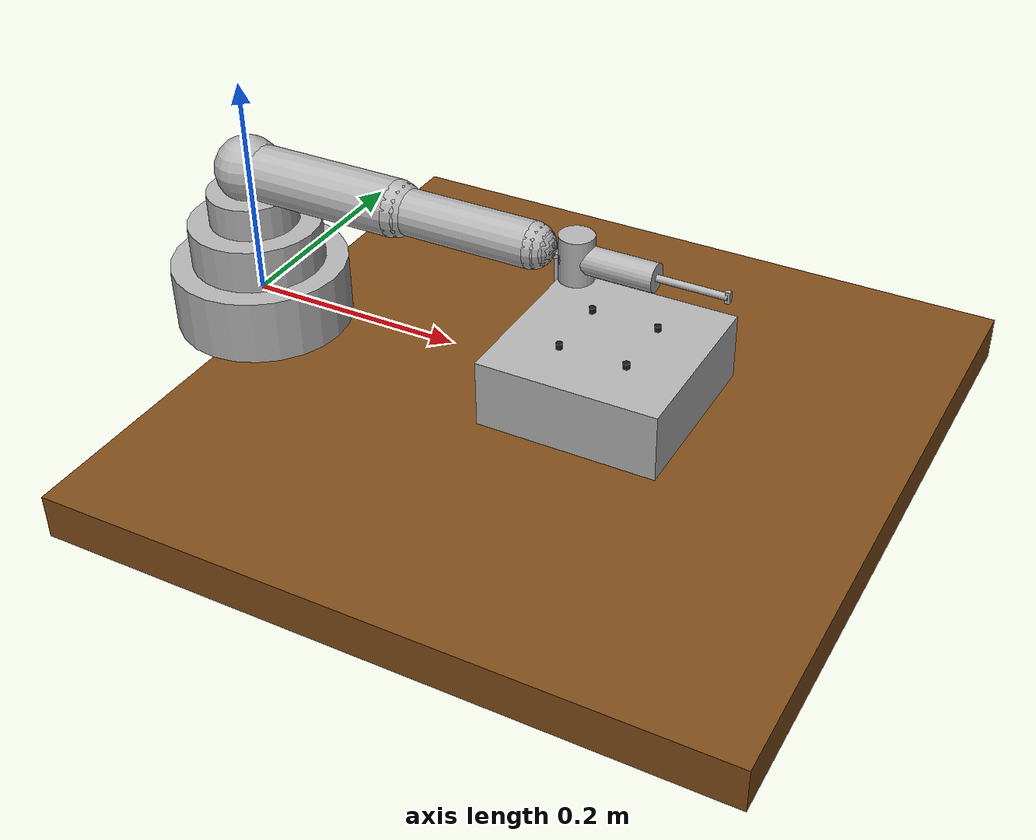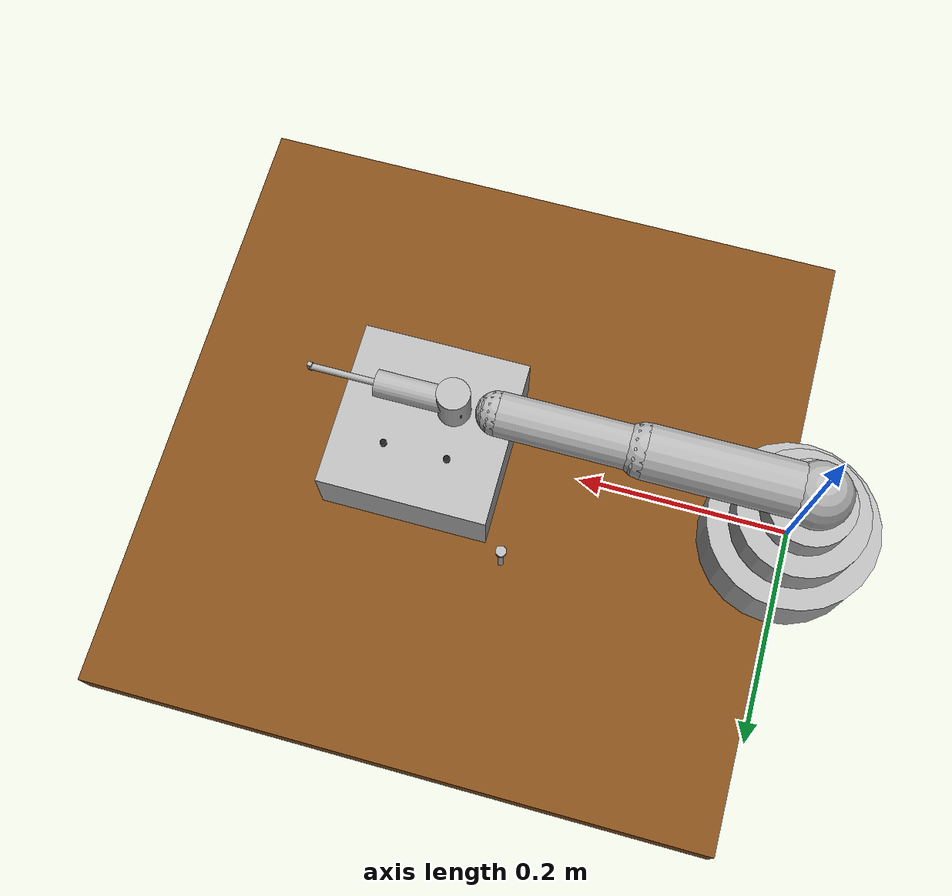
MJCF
<mujoco model="koch_screwdriver_follower_simple">
  <compiler angle="radian"/>

  <option timestep="0.002" gravity="0 0 -9.81">
    <flag contact="enable" energy="enable"/>
  </option>

  <default>
    <joint damping="0.1"/>
    <geom friction="1 0.5 0.001" rgba="0.7 0.7 0.7 1"/>
  </default>

  <asset>
    <material name="robot_gray" rgba="0.7 0.7 0.7 1"/>
    <material name="robot_black" rgba="0.2 0.2 0.2 1"/>
    <material name="tool_blue" rgba="0.3 0.3 0.8 1"/>
    <material name="wood" rgba="0.6 0.4 0.2 1"/>
    <material name="metal" rgba="0.8 0.8 0.8 1"/>
  </asset>

  <worldbody>
    <!-- Fixed base -->
    <body name="base" pos="0 0 0">
      <geom name="base_cylinder" type="cylinder" size="0.08 0.03" material="robot_black"/>
      <geom name="base_top" type="cylinder" size="0.06 0.02" pos="0 0 0.05" material="robot_gray"/>

      <!-- Joint 1: shoulder_pan (Z-axis rotation) -->
      <body name="shoulder_pan_link" pos="0 0 0.07">
        <joint name="shoulder_pan" type="hinge" axis="0 0 1" range="-3.14159 3.14159"/>
        <geom name="shoulder_base" type="cylinder" size="0.04 0.03" material="robot_gray"/>

        <!-- Joint 2: shoulder_lift (Y-axis rotation) -->
        <body name="shoulder_lift_link" pos="0 0 0.05">
          <joint name="shoulder_lift" type="hinge" axis="0 1 0" range="-1.57 1.57"/>
          <geom name="shoulder_joint" type="sphere" size="0.03" material="robot_black"/>
          <geom name="upper_arm" type="capsule" fromto="0 0 0 0.15 0 0" size="0.025" material="robot_gray"/>

          <!-- Joint 3: elbow_flex (Y-axis rotation) -->
          <body name="elbow_flex_link" pos="0.15 0 0">
            <joint name="elbow_flex" type="hinge" axis="0 1 0" range="-1.57 1.57" damping="0.05"/>
            <geom name="elbow_joint" type="sphere" size="0.025" material="robot_black"/>
            <geom name="forearm" type="capsule" fromto="0 0 0 0.13 0 0" size="0.02" material="robot_gray"/>

            <!-- Joint 4: wrist_flex (Y-axis rotation) -->
            <body name="wrist_flex_link" pos="0.13 0 0">
              <joint name="wrist_flex" type="hinge" axis="0 1 0" range="-1.57 1.57" damping="0.05"/>
              <geom name="wrist_joint" type="sphere" size="0.02" material="robot_black"/>

              <!-- Joint 5: wrist_roll (X-axis rotation) -->
              <body name="wrist_roll_link" pos="0.04 0 0">
                <joint name="wrist_roll" type="hinge" axis="1 0 0" range="-3.14159 3.14159" damping="0.05"/>
                <geom name="wrist_mount" type="cylinder" size="0.015 0.02" pos="0 0 0" material="robot_gray"/>

                <!-- Joint 6: screwdriver (X-axis continuous rotation) -->
                <body name="screwdriver_mount" pos="0.03 0 0">
                  <joint name="screwdriver" type="hinge" axis="1 0 0" damping="0.01"/>
                  <!-- Screwdriver handle -->
                  <geom name="screwdriver_handle" type="cylinder" size="0.012 0.04"
                        pos="0 0 0" material="tool_blue" euler="0 1.5708 0"/>
                  <!-- Screwdriver shaft -->
                  <geom name="screwdriver_shaft" type="cylinder" size="0.003 0.05"
                        pos="0.05 0 0" material="metal" euler="0 1.5708 0"/>
                  <!-- Screwdriver tip (Phillips head approximation) -->
                  <geom name="screwdriver_tip" type="box" size="0.002 0.002 0.005"
                        pos="0.1 0 0" material="metal" friction="2.0 0.005 0.0001"/>
                </body>
              </body>
            </body>
          </body>
        </body>
      </body>
    </body>

    <!-- Work table -->
    <body name="table" pos="0.3 0 -0.05">
      <geom name="table_top" type="box" size="0.3 0.3 0.02" rgba="0.5 0.3 0.1 1"/>
    </body>

    <!-- Workpiece with screw holes -->
    <body name="workpiece" pos="0.35 0 0.02">
      <freejoint/>
      <geom name="wood_block" type="box" size="0.08 0.08 0.03" material="wood" mass="0.2"/>

      <!-- Screw hole 1 -->
      <body name="screw_hole_1" pos="0.03 0.03 0">
        <geom name="hole_1" type="cylinder" size="0.003 0.035" rgba="0.1 0.1 0.1 1" contype="0" conaffinity="0"/>
      </body>

      <!-- Screw hole 2 -->
      <body name="screw_hole_2" pos="-0.03 0.03 0">
        <geom name="hole_2" type="cylinder" size="0.003 0.035" rgba="0.1 0.1 0.1 1" contype="0" conaffinity="0"/>
      </body>

      <!-- Screw hole 3 -->
      <body name="screw_hole_3" pos="0.03 -0.03 0">
        <geom name="hole_3" type="cylinder" size="0.003 0.035" rgba="0.1 0.1 0.1 1" contype="0" conaffinity="0"/>
      </body>

      <!-- Screw hole 4 -->
      <body name="screw_hole_4" pos="-0.03 -0.03 0">
        <geom name="hole_4" type="cylinder" size="0.003 0.035" rgba="0.1 0.1 0.1 1" contype="0" conaffinity="0"/>
      </body>
    </body>

    <!-- Screws to insert -->
    <body name="screw_1" pos="0.25 0.1 0.05">
      <freejoint/>
      <geom name="screw_head_1" type="cylinder" size="0.005 0.002" material="metal" mass="0.01"/>
      <geom name="screw_body_1" type="cylinder" size="0.0025 0.02" pos="0 0 -0.02" material="metal"/>
    </body>
  </worldbody>

  <actuator>
    <!-- Position control for joints 1-5 -->
    <position name="shoulder_pan_actuator" joint="shoulder_pan" kp="100" kd="10" ctrlrange="-3.14159 3.14159"/>
    <position name="shoulder_lift_actuator" joint="shoulder_lift" kp="100" kd="10" ctrlrange="-1.57 1.57"/>
    <position name="elbow_flex_actuator" joint="elbow_flex" kp="50" kd="5" ctrlrange="-1.57 1.57"/>
    <position name="wrist_flex_actuator" joint="wrist_flex" kp="50" kd="5" ctrlrange="-1.57 1.57"/>
    <position name="wrist_roll_actuator" joint="wrist_roll" kp="50" kd="5" ctrlrange="-3.14159 3.14159"/>

    <!-- Velocity control for screwdriver -->
    <velocity name="screwdriver_actuator" joint="screwdriver" kv="10" ctrlrange="-10 10"/>
  </actuator>

  <sensor>
    <!-- Joint position sensors -->
    <jointpos name="shoulder_pan_pos" joint="shoulder_pan"/>
    <jointpos name="shoulder_lift_pos" joint="shoulder_lift"/>
    <jointpos name="elbow_flex_pos" joint="elbow_flex"/>
    <jointpos name="wrist_flex_pos" joint="wrist_flex"/>
    <jointpos name="wrist_roll_pos" joint="wrist_roll"/>

    <!-- Joint velocity sensors -->
    <jointvel name="shoulder_pan_vel" joint="shoulder_pan"/>
    <jointvel name="shoulder_lift_vel" joint="shoulder_lift"/>
    <jointvel name="elbow_flex_vel" joint="elbow_flex"/>
    <jointvel name="wrist_flex_vel" joint="wrist_flex"/>
    <jointvel name="wrist_roll_vel" joint="wrist_roll"/>
    <jointvel name="screwdriver_vel" joint="screwdriver"/>

    <!-- Torque sensors -->
    <torque name="screwdriver_torque" joint="screwdriver"/>

    <!-- Touch sensors for screwdriver tip -->
    <touch name="screwdriver_touch" site="screwdriver_tip_site"/>
  </sensor>

  <site>
    <!-- Site at screwdriver tip for touch sensing -->
    <site name="screwdriver_tip_site" pos="0.1 0 0" size="0.003" rgba="1 0 0 0.5" group="1"/>
  </site>

  <!-- Cameras -->
  <camera name="side_camera" pos="0.7 0.7 0.5" xyaxes="-1 -1 0 0 0 1" fovy="45"/>
  <camera name="top_camera" pos="0.35 0 0.8" xyaxes="1 0 0 0 1 0" fovy="45"/>
  <camera name="wrist_camera" pos="0.05 0 0.02" xyaxes="0 -1 0 1 0 0" fovy="60" mode="fixed" bodyid="5"/>
</mujoco>
